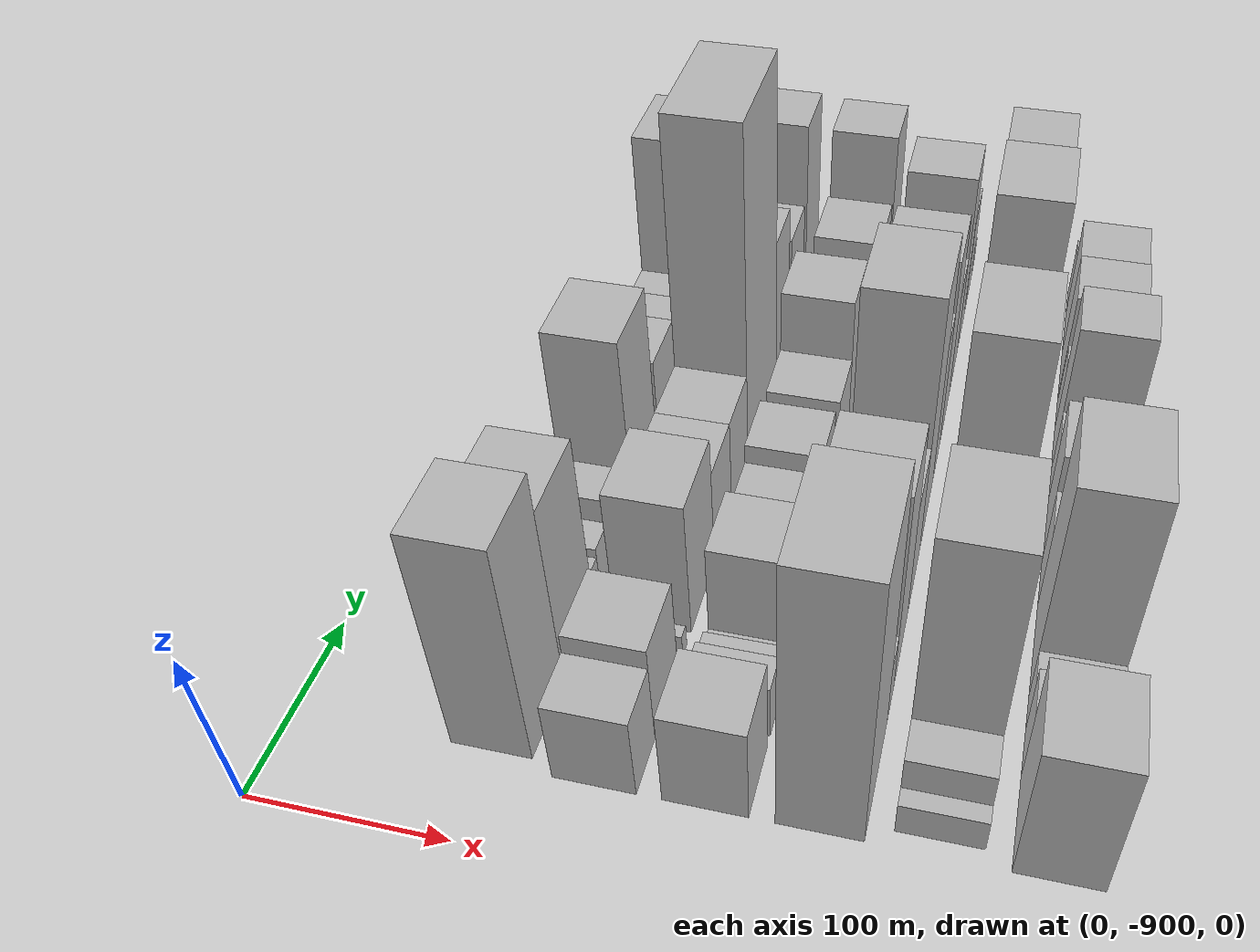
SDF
<sdf version="1.6">
 <world name="default">
  <model name="building_1">
   <static>1</static>
   <pose>100.0000 -831.2529 0 0.000000 0.000000 0.000000</pose>
   <link name="link">
    <pose>0 0 72.00 0 0 0</pose>
    <collision name="collision"><geometry><box><size>40.0000 43.4942 144.0000</size></box></geometry></collision>
    <visual name="visual">
     <cast_shadows>0</cast_shadows>
     <geometry><box><size>40.0000 43.4942 144.0000</size></box></geometry>
     <material>
      <script>
       <uri>model://HANNAS_wall/materials/scripts</uri>
       <uri>model://HANNAS_wall/materials/textures</uri>
       <name>vrc/HANNAS_wall</name>
      </script>
     </material>
    </visual>
   </link>
  </model>
  <model name="building_2">
   <static>1</static>
   <pose>100.0000 -786.3513 0 0.000000 0.000000 0.000000</pose>
   <link name="link">
    <pose>0 0 60.00 0 0 0</pose>
    <collision name="collision"><geometry><box><size>40.0000 46.3092 120.0000</size></box></geometry></collision>
    <visual name="visual">
     <cast_shadows>0</cast_shadows>
     <geometry><box><size>40.0000 46.3092 120.0000</size></box></geometry>
     <material>
      <script>
       <uri>model://HANNAS_wall/materials/scripts</uri>
       <uri>model://HANNAS_wall/materials/textures</uri>
       <name>vrc/HANNAS_wall</name>
      </script>
     </material>
    </visual>
   </link>
  </model>
  <model name="building_3">
   <static>1</static>
   <pose>100.0000 -757.7851 0 0.000000 0.000000 0.000000</pose>
   <link name="link">
    <pose>0 0 13.50 0 0 0</pose>
    <collision name="collision"><geometry><box><size>40.0000 10.8232 27.0000</size></box></geometry></collision>
    <visual name="visual">
     <cast_shadows>0</cast_shadows>
     <geometry><box><size>40.0000 10.8232 27.0000</size></box></geometry>
     <material>
      <script>
       <uri>model://HANNAS_wall/materials/scripts</uri>
       <uri>model://HANNAS_wall/materials/textures</uri>
       <name>vrc/HANNAS_wall</name>
      </script>
     </material>
    </visual>
   </link>
  </model>
  <model name="building_4">
   <static>1</static>
   <pose>100.0000 -743.1036 0 0.000000 0.000000 0.000000</pose>
   <link name="link">
    <pose>0 0 16.50 0 0 0</pose>
    <collision name="collision"><geometry><box><size>40.0000 18.5398 33.0000</size></box></geometry></collision>
    <visual name="visual">
     <cast_shadows>0</cast_shadows>
     <geometry><box><size>40.0000 18.5398 33.0000</size></box></geometry>
     <material>
      <script>
       <uri>model://HANNAS_wall/materials/scripts</uri>
       <uri>model://HANNAS_wall/materials/textures</uri>
       <name>vrc/HANNAS_wall</name>
      </script>
     </material>
    </visual>
   </link>
  </model>
  <model name="building_5">
   <static>1</static>
   <pose>100.0000 -715.5451 0 0.000000 0.000000 0.000000</pose>
   <link name="link">
    <pose>0 0 21.00 0 0 0</pose>
    <collision name="collision"><geometry><box><size>40.0000 24.5773 42.0000</size></box></geometry></collision>
    <visual name="visual">
     <cast_shadows>0</cast_shadows>
     <geometry><box><size>40.0000 24.5773 42.0000</size></box></geometry>
     <material>
      <script>
       <uri>model://HANNAS_wall/materials/scripts</uri>
       <uri>model://HANNAS_wall/materials/textures</uri>
       <name>vrc/HANNAS_wall</name>
      </script>
     </material>
    </visual>
   </link>
  </model>
  <model name="building_6">
   <static>1</static>
   <pose>100.0000 -672.3743 0 0.000000 0.000000 0.000000</pose>
   <link name="link">
    <pose>0 0 60.00 0 0 0</pose>
    <collision name="collision"><geometry><box><size>40.0000 45.7643 120.0000</size></box></geometry></collision>
    <visual name="visual">
     <cast_shadows>0</cast_shadows>
     <geometry><box><size>40.0000 45.7643 120.0000</size></box></geometry>
     <material>
      <script>
       <uri>model://HANNAS_wall/materials/scripts</uri>
       <uri>model://HANNAS_wall/materials/textures</uri>
       <name>vrc/HANNAS_wall</name>
      </script>
     </material>
    </visual>
   </link>
  </model>
  <model name="building_7">
   <static>1</static>
   <pose>100.0000 -626.1517 0 0.000000 0.000000 0.000000</pose>
   <link name="link">
    <pose>0 0 33.00 0 0 0</pose>
    <collision name="collision"><geometry><box><size>40.0000 38.6808 66.0000</size></box></geometry></collision>
    <visual name="visual">
     <cast_shadows>0</cast_shadows>
     <geometry><box><size>40.0000 38.6808 66.0000</size></box></geometry>
     <material>
      <script>
       <uri>model://HANNAS_wall/materials/scripts</uri>
       <uri>model://HANNAS_wall/materials/textures</uri>
       <name>vrc/HANNAS_wall</name>
      </script>
     </material>
    </visual>
   </link>
  </model>
  <model name="building_8">
   <static>1</static>
   <pose>100.0000 -585.7015 0 0.000000 0.000000 0.000000</pose>
   <link name="link">
    <pose>0 0 27.00 0 0 0</pose>
    <collision name="collision"><geometry><box><size>40.0000 28.2197 54.0000</size></box></geometry></collision>
    <visual name="visual">
     <cast_shadows>0</cast_shadows>
     <geometry><box><size>40.0000 28.2197 54.0000</size></box></geometry>
     <material>
      <script>
       <uri>model://HANNAS_wall/materials/scripts</uri>
       <uri>model://HANNAS_wall/materials/textures</uri>
       <name>vrc/HANNAS_wall</name>
      </script>
     </material>
    </visual>
   </link>
  </model>
  <model name="building_9">
   <static>1</static>
   <pose>100.0000 -550.1398 0 0.000000 0.000000 0.000000</pose>
   <link name="link">
    <pose>0 0 22.50 0 0 0</pose>
    <collision name="collision"><geometry><box><size>40.0000 22.9038 45.0000</size></box></geometry></collision>
    <visual name="visual">
     <cast_shadows>0</cast_shadows>
     <geometry><box><size>40.0000 22.9038 45.0000</size></box></geometry>
     <material>
      <script>
       <uri>model://HANNAS_wall/materials/scripts</uri>
       <uri>model://HANNAS_wall/materials/textures</uri>
       <name>vrc/HANNAS_wall</name>
      </script>
     </material>
    </visual>
   </link>
  </model>
  <model name="building_10">
   <static>1</static>
   <pose>100.0000 -513.6906 0 0.000000 0.000000 0.000000</pose>
   <link name="link">
    <pose>0 0 69.00 0 0 0</pose>
    <collision name="collision"><geometry><box><size>40.0000 49.9946 138.0000</size></box></geometry></collision>
    <visual name="visual">
     <cast_shadows>0</cast_shadows>
     <geometry><box><size>40.0000 49.9946 138.0000</size></box></geometry>
     <material>
      <script>
       <uri>model://HANNAS_wall/materials/scripts</uri>
       <uri>model://HANNAS_wall/materials/textures</uri>
       <name>vrc/HANNAS_wall</name>
      </script>
     </material>
    </visual>
   </link>
  </model>
  <model name="building_11">
   <static>1</static>
   <pose>100.0000 -471.7270 0 0.000000 0.000000 0.000000</pose>
   <link name="link">
    <pose>0 0 33.00 0 0 0</pose>
    <collision name="collision"><geometry><box><size>40.0000 33.9325 66.0000</size></box></geometry></collision>
    <visual name="visual">
     <cast_shadows>0</cast_shadows>
     <geometry><box><size>40.0000 33.9325 66.0000</size></box></geometry>
     <material>
      <script>
       <uri>model://HANNAS_wall/materials/scripts</uri>
       <uri>model://HANNAS_wall/materials/textures</uri>
       <name>vrc/HANNAS_wall</name>
      </script>
     </material>
    </visual>
   </link>
  </model>
  <model name="building_12">
   <static>1</static>
   <pose>100.0000 -435.5346 0 0.000000 0.000000 0.000000</pose>
   <link name="link">
    <pose>0 0 16.50 0 0 0</pose>
    <collision name="collision"><geometry><box><size>40.0000 18.4524 33.0000</size></box></geometry></collision>
    <visual name="visual">
     <cast_shadows>0</cast_shadows>
     <geometry><box><size>40.0000 18.4524 33.0000</size></box></geometry>
     <material>
      <script>
       <uri>model://HANNAS_wall/materials/scripts</uri>
       <uri>model://HANNAS_wall/materials/textures</uri>
       <name>vrc/HANNAS_wall</name>
      </script>
     </material>
    </visual>
   </link>
  </model>
  <model name="building_52">
   <static>1</static>
   <pose>152.0000 -845.1255 0 0.000000 0.000000 0.000000</pose>
   <link name="link">
    <pose>0 0 27.00 0 0 0</pose>
    <collision name="collision"><geometry><box><size>40.0000 29.7491 54.0000</size></box></geometry></collision>
    <visual name="visual">
     <cast_shadows>0</cast_shadows>
     <geometry><box><size>40.0000 29.7491 54.0000</size></box></geometry>
     <material>
      <script>
       <uri>model://HANNAS_wall/materials/scripts</uri>
       <uri>model://HANNAS_wall/materials/textures</uri>
       <name>vrc/HANNAS_wall</name>
      </script>
     </material>
    </visual>
   </link>
  </model>
  <model name="building_53">
   <static>1</static>
   <pose>152.0000 -810.6342 0 0.000000 0.000000 0.000000</pose>
   <link name="link">
    <pose>0 0 33.00 0 0 0</pose>
    <collision name="collision"><geometry><box><size>40.0000 39.2335 66.0000</size></box></geometry></collision>
    <visual name="visual">
     <cast_shadows>0</cast_shadows>
     <geometry><box><size>40.0000 39.2335 66.0000</size></box></geometry>
     <material>
      <script>
       <uri>model://HANNAS_wall/materials/scripts</uri>
       <uri>model://HANNAS_wall/materials/textures</uri>
       <name>vrc/HANNAS_wall</name>
      </script>
     </material>
    </visual>
   </link>
  </model>
  <model name="building_54">
   <static>1</static>
   <pose>152.0000 -778.3566 0 0.000000 0.000000 0.000000</pose>
   <link name="link">
    <pose>0 0 7.50 0 0 0</pose>
    <collision name="collision"><geometry><box><size>40.0000 7.3215 15.0000</size></box></geometry></collision>
    <visual name="visual">
     <cast_shadows>0</cast_shadows>
     <geometry><box><size>40.0000 7.3215 15.0000</size></box></geometry>
     <material>
      <script>
       <uri>model://HANNAS_wall/materials/scripts</uri>
       <uri>model://HANNAS_wall/materials/textures</uri>
       <name>vrc/HANNAS_wall</name>
      </script>
     </material>
    </visual>
   </link>
  </model>
  <model name="building_55">
   <static>1</static>
   <pose>152.0000 -743.5106 0 0.000000 0.000000 0.000000</pose>
   <link name="link">
    <pose>0 0 45.00 0 0 0</pose>
    <collision name="collision"><geometry><box><size>40.0000 46.3705 90.0000</size></box></geometry></collision>
    <visual name="visual">
     <cast_shadows>0</cast_shadows>
     <geometry><box><size>40.0000 46.3705 90.0000</size></box></geometry>
     <material>
      <script>
       <uri>model://HANNAS_wall/materials/scripts</uri>
       <uri>model://HANNAS_wall/materials/textures</uri>
       <name>vrc/HANNAS_wall</name>
      </script>
     </material>
    </visual>
   </link>
  </model>
  <model name="building_56">
   <static>1</static>
   <pose>152.0000 -701.5394 0 0.000000 0.000000 0.000000</pose>
   <link name="link">
    <pose>0 0 33.00 0 0 0</pose>
    <collision name="collision"><geometry><box><size>40.0000 37.5720 66.0000</size></box></geometry></collision>
    <visual name="visual">
     <cast_shadows>0</cast_shadows>
     <geometry><box><size>40.0000 37.5720 66.0000</size></box></geometry>
     <material>
      <script>
       <uri>model://HANNAS_wall/materials/scripts</uri>
       <uri>model://HANNAS_wall/materials/textures</uri>
       <name>vrc/HANNAS_wall</name>
      </script>
     </material>
    </visual>
   </link>
  </model>
  <model name="building_57">
   <static>1</static>
   <pose>152.0000 -663.7339 0 0.000000 0.000000 0.000000</pose>
   <link name="link">
    <pose>0 0 33.00 0 0 0</pose>
    <collision name="collision"><geometry><box><size>40.0000 38.0390 66.0000</size></box></geometry></collision>
    <visual name="visual">
     <cast_shadows>0</cast_shadows>
     <geometry><box><size>40.0000 38.0390 66.0000</size></box></geometry>
     <material>
      <script>
       <uri>model://HANNAS_wall/materials/scripts</uri>
       <uri>model://HANNAS_wall/materials/textures</uri>
       <name>vrc/HANNAS_wall</name>
      </script>
     </material>
    </visual>
   </link>
  </model>
  <model name="building_58">
   <static>1</static>
   <pose>152.0000 -608.2268 0 0.000000 0.000000 0.000000</pose>
   <link name="link">
    <pose>0 0 109.50 0 0 0</pose>
    <collision name="collision"><geometry><box><size>40.0000 72.9752 219.0000</size></box></geometry></collision>
    <visual name="visual">
     <cast_shadows>0</cast_shadows>
     <geometry><box><size>40.0000 72.9752 219.0000</size></box></geometry>
     <material>
      <script>
       <uri>model://HANNAS_wall/materials/scripts</uri>
       <uri>model://HANNAS_wall/materials/textures</uri>
       <name>vrc/HANNAS_wall</name>
      </script>
     </material>
    </visual>
   </link>
  </model>
  <model name="building_59">
   <static>1</static>
   <pose>152.0000 -554.1068 0 0.000000 0.000000 0.000000</pose>
   <link name="link">
    <pose>0 0 51.00 0 0 0</pose>
    <collision name="collision"><geometry><box><size>40.0000 35.2647 102.0000</size></box></geometry></collision>
    <visual name="visual">
     <cast_shadows>0</cast_shadows>
     <geometry><box><size>40.0000 35.2647 102.0000</size></box></geometry>
     <material>
      <script>
       <uri>model://HANNAS_wall/materials/scripts</uri>
       <uri>model://HANNAS_wall/materials/textures</uri>
       <name>vrc/HANNAS_wall</name>
      </script>
     </material>
    </visual>
   </link>
  </model>
  <model name="building_60">
   <static>1</static>
   <pose>152.0000 -511.3750 0 0.000000 0.000000 0.000000</pose>
   <link name="link">
    <pose>0 0 37.50 0 0 0</pose>
    <collision name="collision"><geometry><box><size>40.0000 38.1989 75.0000</size></box></geometry></collision>
    <visual name="visual">
     <cast_shadows>0</cast_shadows>
     <geometry><box><size>40.0000 38.1989 75.0000</size></box></geometry>
     <material>
      <script>
       <uri>model://HANNAS_wall/materials/scripts</uri>
       <uri>model://HANNAS_wall/materials/textures</uri>
       <name>vrc/HANNAS_wall</name>
      </script>
     </material>
    </visual>
   </link>
  </model>
  <model name="building_61">
   <static>1</static>
   <pose>152.0000 -464.7462 0 0.000000 0.000000 0.000000</pose>
   <link name="link">
    <pose>0 0 63.00 0 0 0</pose>
    <collision name="collision"><geometry><box><size>40.0000 41.0586 126.0000</size></box></geometry></collision>
    <visual name="visual">
     <cast_shadows>0</cast_shadows>
     <geometry><box><size>40.0000 41.0586 126.0000</size></box></geometry>
     <material>
      <script>
       <uri>model://HANNAS_wall/materials/scripts</uri>
       <uri>model://HANNAS_wall/materials/textures</uri>
       <name>vrc/HANNAS_wall</name>
      </script>
     </material>
    </visual>
   </link>
  </model>
  <model name="building_94">
   <static>1</static>
   <pose>204.0000 -841.3755 0 0.000000 0.000000 0.000000</pose>
   <link name="link">
    <pose>0 0 31.50 0 0 0</pose>
    <collision name="collision"><geometry><box><size>40.0000 37.2490 63.0000</size></box></geometry></collision>
    <visual name="visual">
     <cast_shadows>0</cast_shadows>
     <geometry><box><size>40.0000 37.2490 63.0000</size></box></geometry>
     <material>
      <script>
       <uri>model://HANNAS_wall/materials/scripts</uri>
       <uri>model://HANNAS_wall/materials/textures</uri>
       <name>vrc/HANNAS_wall</name>
      </script>
     </material>
    </visual>
   </link>
  </model>
  <model name="building_95">
   <static>1</static>
   <pose>204.0000 -807.4104 0 0.000000 0.000000 0.000000</pose>
   <link name="link">
    <pose>0 0 18.00 0 0 0</pose>
    <collision name="collision"><geometry><box><size>40.0000 18.6813 36.0000</size></box></geometry></collision>
    <visual name="visual">
     <cast_shadows>0</cast_shadows>
     <geometry><box><size>40.0000 18.6813 36.0000</size></box></geometry>
     <material>
      <script>
       <uri>model://HANNAS_wall/materials/scripts</uri>
       <uri>model://HANNAS_wall/materials/textures</uri>
       <name>vrc/HANNAS_wall</name>
      </script>
     </material>
    </visual>
   </link>
  </model>
  <model name="building_96">
   <static>1</static>
   <pose>204.0000 -791.4797 0 0.000000 0.000000 0.000000</pose>
   <link name="link">
    <pose>0 0 13.50 0 0 0</pose>
    <collision name="collision"><geometry><box><size>40.0000 13.1799 27.0000</size></box></geometry></collision>
    <visual name="visual">
     <cast_shadows>0</cast_shadows>
     <geometry><box><size>40.0000 13.1799 27.0000</size></box></geometry>
     <material>
      <script>
       <uri>model://HANNAS_wall/materials/scripts</uri>
       <uri>model://HANNAS_wall/materials/textures</uri>
       <name>vrc/HANNAS_wall</name>
      </script>
     </material>
    </visual>
   </link>
  </model>
  <model name="building_97">
   <static>1</static>
   <pose>204.0000 -780.4863 0 0.000000 0.000000 0.000000</pose>
   <link name="link">
    <pose>0 0 9.00 0 0 0</pose>
    <collision name="collision"><geometry><box><size>40.0000 8.8071 18.0000</size></box></geometry></collision>
    <visual name="visual">
     <cast_shadows>0</cast_shadows>
     <geometry><box><size>40.0000 8.8071 18.0000</size></box></geometry>
     <material>
      <script>
       <uri>model://HANNAS_wall/materials/scripts</uri>
       <uri>model://HANNAS_wall/materials/textures</uri>
       <name>vrc/HANNAS_wall</name>
      </script>
     </material>
    </visual>
   </link>
  </model>
  <model name="building_98">
   <static>1</static>
   <pose>204.0000 -756.8051 0 0.000000 0.000000 0.000000</pose>
   <link name="link">
    <pose>0 0 37.50 0 0 0</pose>
    <collision name="collision"><geometry><box><size>40.0000 38.5552 75.0000</size></box></geometry></collision>
    <visual name="visual">
     <cast_shadows>0</cast_shadows>
     <geometry><box><size>40.0000 38.5552 75.0000</size></box></geometry>
     <material>
      <script>
       <uri>model://HANNAS_wall/materials/scripts</uri>
       <uri>model://HANNAS_wall/materials/textures</uri>
       <name>vrc/HANNAS_wall</name>
      </script>
     </material>
    </visual>
   </link>
  </model>
  <model name="building_99">
   <static>1</static>
   <pose>204.0000 -714.7862 0 0.000000 0.000000 0.000000</pose>
   <link name="link">
    <pose>0 0 28.50 0 0 0</pose>
    <collision name="collision"><geometry><box><size>40.0000 31.4826 57.0000</size></box></geometry></collision>
    <visual name="visual">
     <cast_shadows>0</cast_shadows>
     <geometry><box><size>40.0000 31.4826 57.0000</size></box></geometry>
     <material>
      <script>
       <uri>model://HANNAS_wall/materials/scripts</uri>
       <uri>model://HANNAS_wall/materials/textures</uri>
       <name>vrc/HANNAS_wall</name>
      </script>
     </material>
    </visual>
   </link>
  </model>
  <model name="building_100">
   <static>1</static>
   <pose>204.0000 -681.7941 0 0.000000 0.000000 0.000000</pose>
   <link name="link">
    <pose>0 0 34.50 0 0 0</pose>
    <collision name="collision"><geometry><box><size>40.0000 34.5015 69.0000</size></box></geometry></collision>
    <visual name="visual">
     <cast_shadows>0</cast_shadows>
     <geometry><box><size>40.0000 34.5015 69.0000</size></box></geometry>
     <material>
      <script>
       <uri>model://HANNAS_wall/materials/scripts</uri>
       <uri>model://HANNAS_wall/materials/textures</uri>
       <name>vrc/HANNAS_wall</name>
      </script>
     </material>
    </visual>
   </link>
  </model>
  <model name="building_101">
   <static>1</static>
   <pose>204.0000 -661.1271 0 0.000000 0.000000 0.000000</pose>
   <link name="link">
    <pose>0 0 7.50 0 0 0</pose>
    <collision name="collision"><geometry><box><size>40.0000 6.8325 15.0000</size></box></geometry></collision>
    <visual name="visual">
     <cast_shadows>0</cast_shadows>
     <geometry><box><size>40.0000 6.8325 15.0000</size></box></geometry>
     <material>
      <script>
       <uri>model://HANNAS_wall/materials/scripts</uri>
       <uri>model://HANNAS_wall/materials/textures</uri>
       <name>vrc/HANNAS_wall</name>
      </script>
     </material>
    </visual>
   </link>
  </model>
  <model name="building_102">
   <static>1</static>
   <pose>204.0000 -633.0218 0 0.000000 0.000000 0.000000</pose>
   <link name="link">
    <pose>0 0 31.50 0 0 0</pose>
    <collision name="collision"><geometry><box><size>40.0000 35.3781 63.0000</size></box></geometry></collision>
    <visual name="visual">
     <cast_shadows>0</cast_shadows>
     <geometry><box><size>40.0000 35.3781 63.0000</size></box></geometry>
     <material>
      <script>
       <uri>model://HANNAS_wall/materials/scripts</uri>
       <uri>model://HANNAS_wall/materials/textures</uri>
       <name>vrc/HANNAS_wall</name>
      </script>
     </material>
    </visual>
   </link>
  </model>
  <model name="building_103">
   <static>1</static>
   <pose>204.0000 -595.5820 0 0.000000 0.000000 0.000000</pose>
   <link name="link">
    <pose>0 0 51.00 0 0 0</pose>
    <collision name="collision"><geometry><box><size>40.0000 39.5015 102.0000</size></box></geometry></collision>
    <visual name="visual">
     <cast_shadows>0</cast_shadows>
     <geometry><box><size>40.0000 39.5015 102.0000</size></box></geometry>
     <material>
      <script>
       <uri>model://HANNAS_wall/materials/scripts</uri>
       <uri>model://HANNAS_wall/materials/textures</uri>
       <name>vrc/HANNAS_wall</name>
      </script>
     </material>
    </visual>
   </link>
  </model>
  <model name="building_104">
   <static>1</static>
   <pose>204.0000 -566.6958 0 0.000000 0.000000 0.000000</pose>
   <link name="link">
    <pose>0 0 16.50 0 0 0</pose>
    <collision name="collision"><geometry><box><size>40.0000 18.2709 33.0000</size></box></geometry></collision>
    <visual name="visual">
     <cast_shadows>0</cast_shadows>
     <geometry><box><size>40.0000 18.2709 33.0000</size></box></geometry>
     <material>
      <script>
       <uri>model://HANNAS_wall/materials/scripts</uri>
       <uri>model://HANNAS_wall/materials/textures</uri>
       <name>vrc/HANNAS_wall</name>
      </script>
     </material>
    </visual>
   </link>
  </model>
  <model name="building_105">
   <static>1</static>
   <pose>204.0000 -544.9621 0 0.000000 0.000000 0.000000</pose>
   <link name="link">
    <pose>0 0 22.50 0 0 0</pose>
    <collision name="collision"><geometry><box><size>40.0000 25.1966 45.0000</size></box></geometry></collision>
    <visual name="visual">
     <cast_shadows>0</cast_shadows>
     <geometry><box><size>40.0000 25.1966 45.0000</size></box></geometry>
     <material>
      <script>
       <uri>model://HANNAS_wall/materials/scripts</uri>
       <uri>model://HANNAS_wall/materials/textures</uri>
       <name>vrc/HANNAS_wall</name>
      </script>
     </material>
    </visual>
   </link>
  </model>
  <model name="building_106">
   <static>1</static>
   <pose>204.0000 -500.4641 0 0.000000 0.000000 0.000000</pose>
   <link name="link">
    <pose>0 0 37.50 0 0 0</pose>
    <collision name="collision"><geometry><box><size>40.0000 43.7993 75.0000</size></box></geometry></collision>
    <visual name="visual">
     <cast_shadows>0</cast_shadows>
     <geometry><box><size>40.0000 43.7993 75.0000</size></box></geometry>
     <material>
      <script>
       <uri>model://HANNAS_wall/materials/scripts</uri>
       <uri>model://HANNAS_wall/materials/textures</uri>
       <name>vrc/HANNAS_wall</name>
      </script>
     </material>
    </visual>
   </link>
  </model>
  <model name="building_107">
   <static>1</static>
   <pose>204.0000 -474.8218 0 0.000000 0.000000 0.000000</pose>
   <link name="link">
    <pose>0 0 7.50 0 0 0</pose>
    <collision name="collision"><geometry><box><size>40.0000 7.4854 15.0000</size></box></geometry></collision>
    <visual name="visual">
     <cast_shadows>0</cast_shadows>
     <geometry><box><size>40.0000 7.4854 15.0000</size></box></geometry>
     <material>
      <script>
       <uri>model://HANNAS_wall/materials/scripts</uri>
       <uri>model://HANNAS_wall/materials/textures</uri>
       <name>vrc/HANNAS_wall</name>
      </script>
     </material>
    </visual>
   </link>
  </model>
  <model name="building_108">
   <static>1</static>
   <pose>204.0000 -451.2665 0 0.000000 0.000000 0.000000</pose>
   <link name="link">
    <pose>0 0 58.50 0 0 0</pose>
    <collision name="collision"><geometry><box><size>40.0000 39.6251 117.0000</size></box></geometry></collision>
    <visual name="visual">
     <cast_shadows>0</cast_shadows>
     <geometry><box><size>40.0000 39.6251 117.0000</size></box></geometry>
     <material>
      <script>
       <uri>model://HANNAS_wall/materials/scripts</uri>
       <uri>model://HANNAS_wall/materials/textures</uri>
       <name>vrc/HANNAS_wall</name>
      </script>
     </material>
    </visual>
   </link>
  </model>
  <model name="building_144">
   <static>1</static>
   <pose>256.0000 -828.5004 0 0.000000 0.000000 0.000000</pose>
   <link name="link">
    <pose>0 0 87.00 0 0 0</pose>
    <collision name="collision"><geometry><box><size>40.0000 62.9993 174.0000</size></box></geometry></collision>
    <visual name="visual">
     <cast_shadows>0</cast_shadows>
     <geometry><box><size>40.0000 62.9993 174.0000</size></box></geometry>
     <material>
      <script>
       <uri>model://HANNAS_wall/materials/scripts</uri>
       <uri>model://HANNAS_wall/materials/textures</uri>
       <name>vrc/HANNAS_wall</name>
      </script>
     </material>
    </visual>
   </link>
  </model>
  <model name="building_145">
   <static>1</static>
   <pose>256.0000 -786.7940 0 0.000000 0.000000 0.000000</pose>
   <link name="link">
    <pose>0 0 19.50 0 0 0</pose>
    <collision name="collision"><geometry><box><size>40.0000 20.4135 39.0000</size></box></geometry></collision>
    <visual name="visual">
     <cast_shadows>0</cast_shadows>
     <geometry><box><size>40.0000 20.4135 39.0000</size></box></geometry>
     <material>
      <script>
       <uri>model://HANNAS_wall/materials/scripts</uri>
       <uri>model://HANNAS_wall/materials/textures</uri>
       <name>vrc/HANNAS_wall</name>
      </script>
     </material>
    </visual>
   </link>
  </model>
  <model name="building_146">
   <static>1</static>
   <pose>256.0000 -753.5805 0 0.000000 0.000000 0.000000</pose>
   <link name="link">
    <pose>0 0 66.00 0 0 0</pose>
    <collision name="collision"><geometry><box><size>40.0000 46.0135 132.0000</size></box></geometry></collision>
    <visual name="visual">
     <cast_shadows>0</cast_shadows>
     <geometry><box><size>40.0000 46.0135 132.0000</size></box></geometry>
     <material>
      <script>
       <uri>model://HANNAS_wall/materials/scripts</uri>
       <uri>model://HANNAS_wall/materials/textures</uri>
       <name>vrc/HANNAS_wall</name>
      </script>
     </material>
    </visual>
   </link>
  </model>
  <model name="building_147">
   <static>1</static>
   <pose>256.0000 -708.7814 0 0.000000 0.000000 0.000000</pose>
   <link name="link">
    <pose>0 0 37.50 0 0 0</pose>
    <collision name="collision"><geometry><box><size>40.0000 43.5847 75.0000</size></box></geometry></collision>
    <visual name="visual">
     <cast_shadows>0</cast_shadows>
     <geometry><box><size>40.0000 43.5847 75.0000</size></box></geometry>
     <material>
      <script>
       <uri>model://HANNAS_wall/materials/scripts</uri>
       <uri>model://HANNAS_wall/materials/textures</uri>
       <name>vrc/HANNAS_wall</name>
      </script>
     </material>
    </visual>
   </link>
  </model>
  <model name="building_148">
   <static>1</static>
   <pose>256.0000 -660.7673 0 0.000000 0.000000 0.000000</pose>
   <link name="link">
    <pose>0 0 84.00 0 0 0</pose>
    <collision name="collision"><geometry><box><size>40.0000 52.4436 168.0000</size></box></geometry></collision>
    <visual name="visual">
     <cast_shadows>0</cast_shadows>
     <geometry><box><size>40.0000 52.4436 168.0000</size></box></geometry>
     <material>
      <script>
       <uri>model://HANNAS_wall/materials/scripts</uri>
       <uri>model://HANNAS_wall/materials/textures</uri>
       <name>vrc/HANNAS_wall</name>
      </script>
     </material>
    </visual>
   </link>
  </model>
  <model name="building_149">
   <static>1</static>
   <pose>256.0000 -619.3293 0 0.000000 0.000000 0.000000</pose>
   <link name="link">
    <pose>0 0 48.00 0 0 0</pose>
    <collision name="collision"><geometry><box><size>40.0000 30.4324 96.0000</size></box></geometry></collision>
    <visual name="visual">
     <cast_shadows>0</cast_shadows>
     <geometry><box><size>40.0000 30.4324 96.0000</size></box></geometry>
     <material>
      <script>
       <uri>model://HANNAS_wall/materials/scripts</uri>
       <uri>model://HANNAS_wall/materials/textures</uri>
       <name>vrc/HANNAS_wall</name>
      </script>
     </material>
    </visual>
   </link>
  </model>
  <model name="building_150">
   <static>1</static>
   <pose>256.0000 -581.9995 0 0.000000 0.000000 0.000000</pose>
   <link name="link">
    <pose>0 0 64.50 0 0 0</pose>
    <collision name="collision"><geometry><box><size>40.0000 44.2272 129.0000</size></box></geometry></collision>
    <visual name="visual">
     <cast_shadows>0</cast_shadows>
     <geometry><box><size>40.0000 44.2272 129.0000</size></box></geometry>
     <material>
      <script>
       <uri>model://HANNAS_wall/materials/scripts</uri>
       <uri>model://HANNAS_wall/materials/textures</uri>
       <name>vrc/HANNAS_wall</name>
      </script>
     </material>
    </visual>
   </link>
  </model>
  <model name="building_151">
   <static>1</static>
   <pose>256.0000 -540.0950 0 0.000000 0.000000 0.000000</pose>
   <link name="link">
    <pose>0 0 36.00 0 0 0</pose>
    <collision name="collision"><geometry><box><size>40.0000 39.5820 72.0000</size></box></geometry></collision>
    <visual name="visual">
     <cast_shadows>0</cast_shadows>
     <geometry><box><size>40.0000 39.5820 72.0000</size></box></geometry>
     <material>
      <script>
       <uri>model://HANNAS_wall/materials/scripts</uri>
       <uri>model://HANNAS_wall/materials/textures</uri>
       <name>vrc/HANNAS_wall</name>
      </script>
     </material>
    </visual>
   </link>
  </model>
  <model name="building_152">
   <static>1</static>
   <pose>256.0000 -500.9691 0 0.000000 0.000000 0.000000</pose>
   <link name="link">
    <pose>0 0 63.00 0 0 0</pose>
    <collision name="collision"><geometry><box><size>40.0000 38.6698 126.0000</size></box></geometry></collision>
    <visual name="visual">
     <cast_shadows>0</cast_shadows>
     <geometry><box><size>40.0000 38.6698 126.0000</size></box></geometry>
     <material>
      <script>
       <uri>model://HANNAS_wall/materials/scripts</uri>
       <uri>model://HANNAS_wall/materials/textures</uri>
       <name>vrc/HANNAS_wall</name>
      </script>
     </material>
    </visual>
   </link>
  </model>
  <model name="building_153">
   <static>1</static>
   <pose>256.0000 -458.3650 0 0.000000 0.000000 0.000000</pose>
   <link name="link">
    <pose>0 0 34.50 0 0 0</pose>
    <collision name="collision"><geometry><box><size>40.0000 38.5383 69.0000</size></box></geometry></collision>
    <visual name="visual">
     <cast_shadows>0</cast_shadows>
     <geometry><box><size>40.0000 38.5383 69.0000</size></box></geometry>
     <material>
      <script>
       <uri>model://HANNAS_wall/materials/scripts</uri>
       <uri>model://HANNAS_wall/materials/textures</uri>
       <name>vrc/HANNAS_wall</name>
      </script>
     </material>
    </visual>
   </link>
  </model>
  <model name="building_154">
   <static>1</static>
   <pose>256.0000 -428.2529 0 0.000000 0.000000 0.000000</pose>
   <link name="link">
    <pose>0 0 10.50 0 0 0</pose>
    <collision name="collision"><geometry><box><size>40.0000 9.6860 21.0000</size></box></geometry></collision>
    <visual name="visual">
     <cast_shadows>0</cast_shadows>
     <geometry><box><size>40.0000 9.6860 21.0000</size></box></geometry>
     <material>
      <script>
       <uri>model://HANNAS_wall/materials/scripts</uri>
       <uri>model://HANNAS_wall/materials/textures</uri>
       <name>vrc/HANNAS_wall</name>
      </script>
     </material>
    </visual>
   </link>
  </model>
  <model name="building_188">
   <static>1</static>
   <pose>308.0000 -847.4489 0 0.000000 0.000000 0.000000</pose>
   <link name="link">
    <pose>0 0 10.50 0 0 0</pose>
    <collision name="collision"><geometry><box><size>40.0000 9.1022 21.0000</size></box></geometry></collision>
    <visual name="visual">
     <cast_shadows>0</cast_shadows>
     <geometry><box><size>40.0000 9.1022 21.0000</size></box></geometry>
     <material>
      <script>
       <uri>model://HANNAS_wall/materials/scripts</uri>
       <uri>model://HANNAS_wall/materials/textures</uri>
       <name>vrc/HANNAS_wall</name>
      </script>
     </material>
    </visual>
   </link>
  </model>
  <model name="building_189">
   <static>1</static>
   <pose>308.0000 -832.1329 0 0.000000 0.000000 0.000000</pose>
   <link name="link">
    <pose>0 0 21.00 0 0 0</pose>
    <collision name="collision"><geometry><box><size>40.0000 21.5297 42.0000</size></box></geometry></collision>
    <visual name="visual">
     <cast_shadows>0</cast_shadows>
     <geometry><box><size>40.0000 21.5297 42.0000</size></box></geometry>
     <material>
      <script>
       <uri>model://HANNAS_wall/materials/scripts</uri>
       <uri>model://HANNAS_wall/materials/textures</uri>
       <name>vrc/HANNAS_wall</name>
      </script>
     </material>
    </visual>
   </link>
  </model>
  <model name="building_190">
   <static>1</static>
   <pose>308.0000 -795.3180 0 0.000000 0.000000 0.000000</pose>
   <link name="link">
    <pose>0 0 79.50 0 0 0</pose>
    <collision name="collision"><geometry><box><size>40.0000 52.1003 159.0000</size></box></geometry></collision>
    <visual name="visual">
     <cast_shadows>0</cast_shadows>
     <geometry><box><size>40.0000 52.1003 159.0000</size></box></geometry>
     <material>
      <script>
       <uri>model://HANNAS_wall/materials/scripts</uri>
       <uri>model://HANNAS_wall/materials/textures</uri>
       <name>vrc/HANNAS_wall</name>
      </script>
     </material>
    </visual>
   </link>
  </model>
  <model name="building_191">
   <static>1</static>
   <pose>308.0000 -744.3976 0 0.000000 0.000000 0.000000</pose>
   <link name="link">
    <pose>0 0 28.50 0 0 0</pose>
    <collision name="collision"><geometry><box><size>40.0000 33.7404 57.0000</size></box></geometry></collision>
    <visual name="visual">
     <cast_shadows>0</cast_shadows>
     <geometry><box><size>40.0000 33.7404 57.0000</size></box></geometry>
     <material>
      <script>
       <uri>model://HANNAS_wall/materials/scripts</uri>
       <uri>model://HANNAS_wall/materials/textures</uri>
       <name>vrc/HANNAS_wall</name>
      </script>
     </material>
    </visual>
   </link>
  </model>
  <model name="building_192">
   <static>1</static>
   <pose>308.0000 -699.2083 0 0.000000 0.000000 0.000000</pose>
   <link name="link">
    <pose>0 0 34.50 0 0 0</pose>
    <collision name="collision"><geometry><box><size>40.0000 36.6383 69.0000</size></box></geometry></collision>
    <visual name="visual">
     <cast_shadows>0</cast_shadows>
     <geometry><box><size>40.0000 36.6383 69.0000</size></box></geometry>
     <material>
      <script>
       <uri>model://HANNAS_wall/materials/scripts</uri>
       <uri>model://HANNAS_wall/materials/textures</uri>
       <name>vrc/HANNAS_wall</name>
      </script>
     </material>
    </visual>
   </link>
  </model>
  <model name="building_193">
   <static>1</static>
   <pose>308.0000 -653.3305 0 0.000000 0.000000 0.000000</pose>
   <link name="link">
    <pose>0 0 73.50 0 0 0</pose>
    <collision name="collision"><geometry><box><size>40.0000 55.1173 147.0000</size></box></geometry></collision>
    <visual name="visual">
     <cast_shadows>0</cast_shadows>
     <geometry><box><size>40.0000 55.1173 147.0000</size></box></geometry>
     <material>
      <script>
       <uri>model://HANNAS_wall/materials/scripts</uri>
       <uri>model://HANNAS_wall/materials/textures</uri>
       <name>vrc/HANNAS_wall</name>
      </script>
     </material>
    </visual>
   </link>
  </model>
  <model name="building_194">
   <static>1</static>
   <pose>308.0000 -592.7119 0 0.000000 0.000000 0.000000</pose>
   <link name="link">
    <pose>0 0 40.50 0 0 0</pose>
    <collision name="collision"><geometry><box><size>40.0000 46.1199 81.0000</size></box></geometry></collision>
    <visual name="visual">
     <cast_shadows>0</cast_shadows>
     <geometry><box><size>40.0000 46.1199 81.0000</size></box></geometry>
     <material>
      <script>
       <uri>model://HANNAS_wall/materials/scripts</uri>
       <uri>model://HANNAS_wall/materials/textures</uri>
       <name>vrc/HANNAS_wall</name>
      </script>
     </material>
    </visual>
   </link>
  </model>
  <model name="building_195">
   <static>1</static>
   <pose>308.0000 -542.0385 0 0.000000 0.000000 0.000000</pose>
   <link name="link">
    <pose>0 0 75.00 0 0 0</pose>
    <collision name="collision"><geometry><box><size>40.0000 55.2269 150.0000</size></box></geometry></collision>
    <visual name="visual">
     <cast_shadows>0</cast_shadows>
     <geometry><box><size>40.0000 55.2269 150.0000</size></box></geometry>
     <material>
      <script>
       <uri>model://HANNAS_wall/materials/scripts</uri>
       <uri>model://HANNAS_wall/materials/textures</uri>
       <name>vrc/HANNAS_wall</name>
      </script>
     </material>
    </visual>
   </link>
  </model>
  <model name="building_196">
   <static>1</static>
   <pose>308.0000 -505.3242 0 0.000000 0.000000 0.000000</pose>
   <link name="link">
    <pose>0 0 16.50 0 0 0</pose>
    <collision name="collision"><geometry><box><size>40.0000 18.2016 33.0000</size></box></geometry></collision>
    <visual name="visual">
     <cast_shadows>0</cast_shadows>
     <geometry><box><size>40.0000 18.2016 33.0000</size></box></geometry>
     <material>
      <script>
       <uri>model://HANNAS_wall/materials/scripts</uri>
       <uri>model://HANNAS_wall/materials/textures</uri>
       <name>vrc/HANNAS_wall</name>
      </script>
     </material>
    </visual>
   </link>
  </model>
  <model name="building_197">
   <static>1</static>
   <pose>308.0000 -481.2137 0 0.000000 0.000000 0.000000</pose>
   <link name="link">
    <pose>0 0 25.50 0 0 0</pose>
    <collision name="collision"><geometry><box><size>40.0000 30.0194 51.0000</size></box></geometry></collision>
    <visual name="visual">
     <cast_shadows>0</cast_shadows>
     <geometry><box><size>40.0000 30.0194 51.0000</size></box></geometry>
     <material>
      <script>
       <uri>model://HANNAS_wall/materials/scripts</uri>
       <uri>model://HANNAS_wall/materials/textures</uri>
       <name>vrc/HANNAS_wall</name>
      </script>
     </material>
    </visual>
   </link>
  </model>
  <model name="building_198">
   <static>1</static>
   <pose>308.0000 -444.8471 0 0.000000 0.000000 0.000000</pose>
   <link name="link">
    <pose>0 0 60.00 0 0 0</pose>
    <collision name="collision"><geometry><box><size>40.0000 42.7138 120.0000</size></box></geometry></collision>
    <visual name="visual">
     <cast_shadows>0</cast_shadows>
     <geometry><box><size>40.0000 42.7138 120.0000</size></box></geometry>
     <material>
      <script>
       <uri>model://HANNAS_wall/materials/scripts</uri>
       <uri>model://HANNAS_wall/materials/textures</uri>
       <name>vrc/HANNAS_wall</name>
      </script>
     </material>
    </visual>
   </link>
  </model>
  <model name="building_236">
   <static>1</static>
   <pose>360.0000 -836.3985 0 0.000000 0.000000 0.000000</pose>
   <link name="link">
    <pose>0 0 45.00 0 0 0</pose>
    <collision name="collision"><geometry><box><size>40.0000 47.2031 90.0000</size></box></geometry></collision>
    <visual name="visual">
     <cast_shadows>0</cast_shadows>
     <geometry><box><size>40.0000 47.2031 90.0000</size></box></geometry>
     <material>
      <script>
       <uri>model://HANNAS_wall/materials/scripts</uri>
       <uri>model://HANNAS_wall/materials/textures</uri>
       <name>vrc/HANNAS_wall</name>
      </script>
     </material>
    </visual>
   </link>
  </model>
  <model name="building_237">
   <static>1</static>
   <pose>360.0000 -799.9636 0 0.000000 0.000000 0.000000</pose>
   <link name="link">
    <pose>0 0 24.00 0 0 0</pose>
    <collision name="collision"><geometry><box><size>40.0000 25.6667 48.0000</size></box></geometry></collision>
    <visual name="visual">
     <cast_shadows>0</cast_shadows>
     <geometry><box><size>40.0000 25.6667 48.0000</size></box></geometry>
     <material>
      <script>
       <uri>model://HANNAS_wall/materials/scripts</uri>
       <uri>model://HANNAS_wall/materials/textures</uri>
       <name>vrc/HANNAS_wall</name>
      </script>
     </material>
    </visual>
   </link>
  </model>
  <model name="building_238">
   <static>1</static>
   <pose>360.0000 -777.4679 0 0.000000 0.000000 0.000000</pose>
   <link name="link">
    <pose>0 0 18.00 0 0 0</pose>
    <collision name="collision"><geometry><box><size>40.0000 19.3247 36.0000</size></box></geometry></collision>
    <visual name="visual">
     <cast_shadows>0</cast_shadows>
     <geometry><box><size>40.0000 19.3247 36.0000</size></box></geometry>
     <material>
      <script>
       <uri>model://HANNAS_wall/materials/scripts</uri>
       <uri>model://HANNAS_wall/materials/textures</uri>
       <name>vrc/HANNAS_wall</name>
      </script>
     </material>
    </visual>
   </link>
  </model>
  <model name="building_239">
   <static>1</static>
   <pose>360.0000 -739.5137 0 0.000000 0.000000 0.000000</pose>
   <link name="link">
    <pose>0 0 72.00 0 0 0</pose>
    <collision name="collision"><geometry><box><size>40.0000 56.5839 144.0000</size></box></geometry></collision>
    <visual name="visual">
     <cast_shadows>0</cast_shadows>
     <geometry><box><size>40.0000 56.5839 144.0000</size></box></geometry>
     <material>
      <script>
       <uri>model://HANNAS_wall/materials/scripts</uri>
       <uri>model://HANNAS_wall/materials/textures</uri>
       <name>vrc/HANNAS_wall</name>
      </script>
     </material>
    </visual>
   </link>
  </model>
  <model name="building_240">
   <static>1</static>
   <pose>360.0000 -696.2247 0 0.000000 0.000000 0.000000</pose>
   <link name="link">
    <pose>0 0 27.00 0 0 0</pose>
    <collision name="collision"><geometry><box><size>40.0000 29.9941 54.0000</size></box></geometry></collision>
    <visual name="visual">
     <cast_shadows>0</cast_shadows>
     <geometry><box><size>40.0000 29.9941 54.0000</size></box></geometry>
     <material>
      <script>
       <uri>model://HANNAS_wall/materials/scripts</uri>
       <uri>model://HANNAS_wall/materials/textures</uri>
       <name>vrc/HANNAS_wall</name>
      </script>
     </material>
    </visual>
   </link>
  </model>
  <model name="building_241">
   <static>1</static>
   <pose>360.0000 -660.0789 0 0.000000 0.000000 0.000000</pose>
   <link name="link">
    <pose>0 0 39.00 0 0 0</pose>
    <collision name="collision"><geometry><box><size>40.0000 42.2975 78.0000</size></box></geometry></collision>
    <visual name="visual">
     <cast_shadows>0</cast_shadows>
     <geometry><box><size>40.0000 42.2975 78.0000</size></box></geometry>
     <material>
      <script>
       <uri>model://HANNAS_wall/materials/scripts</uri>
       <uri>model://HANNAS_wall/materials/textures</uri>
       <name>vrc/HANNAS_wall</name>
      </script>
     </material>
    </visual>
   </link>
  </model>
  <model name="building_242">
   <static>1</static>
   <pose>360.0000 -626.8592 0 0.000000 0.000000 0.000000</pose>
   <link name="link">
    <pose>0 0 24.00 0 0 0</pose>
    <collision name="collision"><geometry><box><size>40.0000 24.1419 48.0000</size></box></geometry></collision>
    <visual name="visual">
     <cast_shadows>0</cast_shadows>
     <geometry><box><size>40.0000 24.1419 48.0000</size></box></geometry>
     <material>
      <script>
       <uri>model://HANNAS_wall/materials/scripts</uri>
       <uri>model://HANNAS_wall/materials/textures</uri>
       <name>vrc/HANNAS_wall</name>
      </script>
     </material>
    </visual>
   </link>
  </model>
  <model name="building_243">
   <static>1</static>
   <pose>360.0000 -595.8249 0 0.000000 0.000000 0.000000</pose>
   <link name="link">
    <pose>0 0 52.50 0 0 0</pose>
    <collision name="collision"><geometry><box><size>40.0000 37.9267 105.0000</size></box></geometry></collision>
    <visual name="visual">
     <cast_shadows>0</cast_shadows>
     <geometry><box><size>40.0000 37.9267 105.0000</size></box></geometry>
     <material>
      <script>
       <uri>model://HANNAS_wall/materials/scripts</uri>
       <uri>model://HANNAS_wall/materials/textures</uri>
       <name>vrc/HANNAS_wall</name>
      </script>
     </material>
    </visual>
   </link>
  </model>
  <model name="building_244">
   <static>1</static>
   <pose>360.0000 -565.1551 0 0.000000 0.000000 0.000000</pose>
   <link name="link">
    <pose>0 0 22.50 0 0 0</pose>
    <collision name="collision"><geometry><box><size>40.0000 23.4128 45.0000</size></box></geometry></collision>
    <visual name="visual">
     <cast_shadows>0</cast_shadows>
     <geometry><box><size>40.0000 23.4128 45.0000</size></box></geometry>
     <material>
      <script>
       <uri>model://HANNAS_wall/materials/scripts</uri>
       <uri>model://HANNAS_wall/materials/textures</uri>
       <name>vrc/HANNAS_wall</name>
      </script>
     </material>
    </visual>
   </link>
  </model>
  <model name="building_245">
   <static>1</static>
   <pose>360.0000 -527.4256 0 0.000000 0.000000 0.000000</pose>
   <link name="link">
    <pose>0 0 37.50 0 0 0</pose>
    <collision name="collision"><geometry><box><size>40.0000 42.0462 75.0000</size></box></geometry></collision>
    <visual name="visual">
     <cast_shadows>0</cast_shadows>
     <geometry><box><size>40.0000 42.0462 75.0000</size></box></geometry>
     <material>
      <script>
       <uri>model://HANNAS_wall/materials/scripts</uri>
       <uri>model://HANNAS_wall/materials/textures</uri>
       <name>vrc/HANNAS_wall</name>
      </script>
     </material>
    </visual>
   </link>
  </model>
  <model name="building_246">
   <static>1</static>
   <pose>360.0000 -485.6801 0 0.000000 0.000000 0.000000</pose>
   <link name="link">
    <pose>0 0 36.00 0 0 0</pose>
    <collision name="collision"><geometry><box><size>40.0000 41.4450 72.0000</size></box></geometry></collision>
    <visual name="visual">
     <cast_shadows>0</cast_shadows>
     <geometry><box><size>40.0000 41.4450 72.0000</size></box></geometry>
     <material>
      <script>
       <uri>model://HANNAS_wall/materials/scripts</uri>
       <uri>model://HANNAS_wall/materials/textures</uri>
       <name>vrc/HANNAS_wall</name>
      </script>
     </material>
    </visual>
   </link>
  </model>
  <model name="building_247">
   <static>1</static>
   <pose>360.0000 -454.0893 0 0.000000 0.000000 0.000000</pose>
   <link name="link">
    <pose>0 0 21.00 0 0 0</pose>
    <collision name="collision"><geometry><box><size>40.0000 21.7367 42.0000</size></box></geometry></collision>
    <visual name="visual">
     <cast_shadows>0</cast_shadows>
     <geometry><box><size>40.0000 21.7367 42.0000</size></box></geometry>
     <material>
      <script>
       <uri>model://HANNAS_wall/materials/scripts</uri>
       <uri>model://HANNAS_wall/materials/textures</uri>
       <name>vrc/HANNAS_wall</name>
      </script>
     </material>
    </visual>
   </link>
  </model>
 </world>
</sdf>
